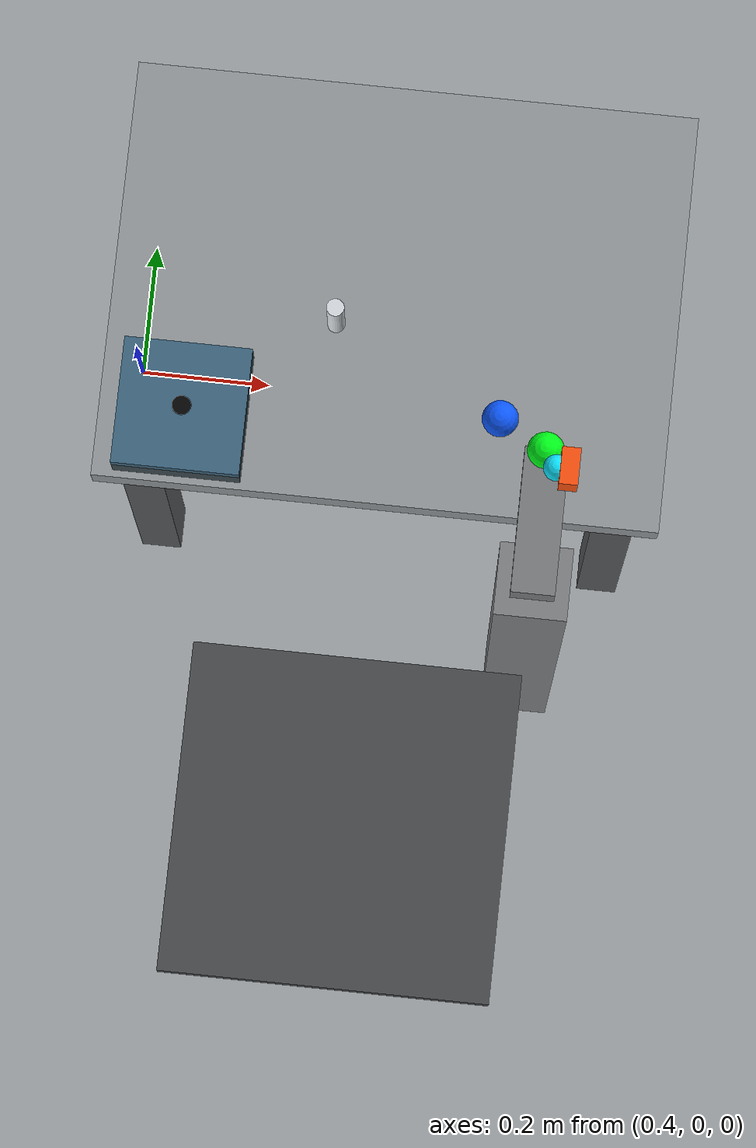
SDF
<?xml version="1.0"?>
<sdf version="1.9">
  <world name="peg_in_hole_robot_contact_validation_world">
    <physics name="1ms" type="ignored">
      <max_step_size>0.001</max_step_size>
      <real_time_factor>1.0</real_time_factor>
      <real_time_update_rate>1000</real_time_update_rate>
    </physics>

    <plugin name="gz::sim::systems::Physics" filename="ignition-gazebo-physics-system"/>
    <plugin name="gz::sim::systems::UserCommands" filename="ignition-gazebo-user-commands-system"/>
    <plugin name="gz::sim::systems::SceneBroadcaster" filename="ignition-gazebo-scene-broadcaster-system"/>
    <plugin name="gz::sim::systems::Contact" filename="ignition-gazebo-contact-system"/>

    <gravity>0 0 -9.81</gravity>
    <magnetic_field>6.0e-6 2.3e-5 -4.2e-5</magnetic_field>
    <atmosphere type="adiabatic"/>

    <scene>
      <ambient>0.45 0.45 0.45 1</ambient>
      <background>0.72 0.74 0.76 1</background>
      <shadows>true</shadows>
    </scene>

    <model name="ground_plane">
      <static>true</static>
      <link name="link">
        <collision name="collision">
          <geometry><plane><normal>0 0 1</normal><size>20 20</size></plane></geometry>
        </collision>
        <visual name="visual">
          <geometry><plane><normal>0 0 1</normal><size>20 20</size></plane></geometry>
          <material>
            <ambient>0.55 0.57 0.58 1</ambient>
            <diffuse>0.62 0.64 0.65 1</diffuse>
          </material>
        </visual>
      </link>
    </model>

    <include>
      <name>work_table</name>
      <uri>model://work_table</uri>
      <pose>0.80 0 0 0 0 0</pose>
    </include>

    <include>
      <name>robot_pedestal</name>
      <uri>model://robot_pedestal</uri>
      <pose>0.80 -0.75 0.0 0 0 0</pose>
    </include>

    <include>
      <name>hole_fixture</name>
      <uri>model://hole_fixture</uri>
      <pose>0.52 -0.20 0.75 0 0 0</pose>
    </include>

    <include>
      <name>target_plate</name>
      <uri>model://target_plate</uri>
      <pose>0.52 -0.20 0.79 0 0 0</pose>
    </include>

    <include>
      <name>cylindrical_peg</name>
      <uri>model://cylindrical_peg</uri>
      <pose>0.72 -0.05 0.75 0 0 0</pose>
    </include>

    <model name="robot_contact_validation_stand">
      <static>true</static>
      <pose>1.03 -0.42 0 0 0 0</pose>
      <link name="robot_contact_validation_stand_link">
        <visual name="robot_contact_validation_stand_visual">
          <pose>0 0 0.48 0 0 0</pose>
          <geometry>
            <box>
              <size>0.10 0.10 0.96</size>
            </box>
          </geometry>
          <material>
            <ambient>0.32 0.33 0.34 1</ambient>
            <diffuse>0.50 0.51 0.52 1</diffuse>
            <specular>0.15 0.15 0.15 1</specular>
          </material>
        </visual>
        <visual name="robot_contact_validation_stand_mount_visual">
          <pose>0 0.075 0.98 0 0 0</pose>
          <geometry>
            <box>
              <size>0.06 0.20 0.06</size>
            </box>
          </geometry>
          <material>
            <ambient>0.30 0.31 0.32 1</ambient>
            <diffuse>0.48 0.49 0.50 1</diffuse>
            <specular>0.12 0.12 0.12 1</specular>
          </material>
        </visual>
      </link>
    </model>

    <model name="robot_contact_validation_pad">
      <static>false</static>
      <pose>1.060 -0.295 1.140 0 0 0</pose>
      <link name="robot_contact_validation_pad_link">
        <gravity>false</gravity>
        <inertial>
          <mass>0.05</mass>
          <inertia>
            <ixx>2.083333e-05</ixx>
            <iyy>1.302083e-05</iyy>
            <izz>1.302083e-05</izz>
            <ixy>0</ixy>
            <ixz>0</ixz>
            <iyz>0</iyz>
          </inertia>
        </inertial>
        <collision name="robot_contact_validation_pad_collision">
          <geometry>
            <box>
              <size>0.025 0.05 0.05</size>
            </box>
          </geometry>
          <surface>
            <contact>
              <ode>
                <kp>2500</kp>
                <kd>35</kd>
              </ode>
            </contact>
            <friction>
              <ode>
                <mu>0.8</mu>
                <mu2>0.8</mu2>
              </ode>
            </friction>
          </surface>
        </collision>

        <sensor name="robot_contact_validation_sensor" type="contact">
          <always_on>true</always_on>
          <update_rate>100.0</update_rate>
          <topic>/world/peg_in_hole_robot_contact_validation_world/model/robot_contact_validation_pad/link/robot_contact_validation_pad_link/sensor/robot_contact_validation_sensor/contact</topic>
          <contact>
            <collision>robot_contact_validation_pad_collision</collision>
          </contact>
        </sensor>

        <visual name="robot_contact_validation_pad_visual">
          <geometry>
            <box>
              <size>0.025 0.05 0.05</size>
            </box>
          </geometry>
          <material>
            <ambient>0.80 0.18 0.04 1</ambient>
            <diffuse>1.00 0.32 0.06 1</diffuse>
            <specular>0.30 0.18 0.12 1</specular>
          </material>
        </visual>

        <visual name="robot_contact_validation_pad_center_marker">
          <pose>-0.017 0 0 0 0 0</pose>
          <geometry>
            <sphere>
              <radius>0.018</radius>
            </sphere>
          </geometry>
          <material>
            <ambient>0.02 0.65 0.85 1</ambient>
            <diffuse>0.05 0.90 1.00 1</diffuse>
            <emissive>0.01 0.20 0.25 1</emissive>
          </material>
        </visual>
      </link>
    </model>

    <model name="measured_pre_approach_tool0_marker">
      <static>true</static>
      <!--
        Visual-only marker at the measured robot_contact_pre_approach tool0
        pose. This model intentionally has no collision and is not a contact
        object.
      -->
      <pose>0.963 -0.212 1.011 0 0 0</pose>
      <link name="measured_pre_approach_tool0_marker_link">
        <visual name="measured_pre_approach_tool0_marker_visual">
          <geometry>
            <sphere>
              <radius>0.025</radius>
            </sphere>
          </geometry>
          <material>
            <ambient>0.02 0.20 1.00 1</ambient>
            <diffuse>0.05 0.35 1.00 1</diffuse>
            <emissive>0.01 0.08 0.45 1</emissive>
          </material>
        </visual>
      </link>
    </model>

    <model name="measured_final_tool0_marker">
      <static>true</static>
      <!--
        Visual-only marker at the measured v1.5 final tool0 endpoint. This
        model intentionally has no collision and is not a contact object.
      -->
      <pose>1.027 -0.267 1.108 0 0 0</pose>
      <link name="measured_final_tool0_marker_link">
        <visual name="measured_final_tool0_marker_visual">
          <geometry>
            <sphere>
              <radius>0.025</radius>
            </sphere>
          </geometry>
          <material>
            <ambient>0.00 1.00 0.10 1</ambient>
            <diffuse>0.00 1.00 0.10 1</diffuse>
            <emissive>0.00 0.60 0.06 1</emissive>
          </material>
        </visual>
      </link>
    </model>

    <light name="key_area_light" type="point">
      <pose>0.20 -0.60 1.80 0 0 0</pose>
      <cast_shadows>true</cast_shadows>
      <intensity>1.4</intensity>
      <diffuse>0.95 0.95 0.90 1</diffuse>
      <specular>0.35 0.35 0.35 1</specular>
      <attenuation>
        <range>5.0</range>
        <constant>0.6</constant>
        <linear>0.15</linear>
        <quadratic>0.02</quadratic>
      </attenuation>
    </light>

    <light name="sun" type="directional">
      <pose>0 0 10 0 0 0</pose>
      <cast_shadows>true</cast_shadows>
      <intensity>0.8</intensity>
      <direction>-0.4 0.2 -0.9</direction>
      <diffuse>0.80 0.82 0.85 1</diffuse>
      <specular>0.20 0.20 0.20 1</specular>
    </light>
  </world>
</sdf>

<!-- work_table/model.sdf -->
<sdf version="1.9">
  <model name="work_table">
    <static>true</static>
    <link name="table_link">
      <!-- Research-cell bench: 0.80 m x 0.60 m top, 0.05 m thick, with a 0.75 m work surface. -->
      <collision name="table_collision">
        <pose>0 0 0.725 0 0 0</pose>
        <geometry><box><size>0.80 0.60 0.05</size></box></geometry>
        <surface>
          <friction><ode><mu>0.8</mu><mu2>0.8</mu2></ode></friction>
        </surface>
      </collision>
      <visual name="tabletop_visual">
        <pose>0 0 0.725 0 0 0</pose>
        <geometry><box><size>0.80 0.60 0.05</size></box></geometry>
        <material>
          <ambient>0.45 0.47 0.48 1</ambient>
          <diffuse>0.58 0.60 0.61 1</diffuse>
          <specular>0.15 0.15 0.15 1</specular>
        </material>
      </visual>

      <collision name="leg_front_left_collision">
        <pose>0.34 0.24 0.35 0 0 0</pose>
        <geometry><box><size>0.06 0.06 0.70</size></box></geometry>
      </collision>
      <visual name="leg_front_left_visual">
        <pose>0.34 0.24 0.35 0 0 0</pose>
        <geometry><box><size>0.06 0.06 0.70</size></box></geometry>
        <material><ambient>0.28 0.29 0.30 1</ambient><diffuse>0.34 0.35 0.36 1</diffuse></material>
      </visual>

      <collision name="leg_front_right_collision">
        <pose>0.34 -0.24 0.35 0 0 0</pose>
        <geometry><box><size>0.06 0.06 0.70</size></box></geometry>
      </collision>
      <visual name="leg_front_right_visual">
        <pose>0.34 -0.24 0.35 0 0 0</pose>
        <geometry><box><size>0.06 0.06 0.70</size></box></geometry>
        <material><ambient>0.28 0.29 0.30 1</ambient><diffuse>0.34 0.35 0.36 1</diffuse></material>
      </visual>

      <collision name="leg_rear_left_collision">
        <pose>-0.34 0.24 0.35 0 0 0</pose>
        <geometry><box><size>0.06 0.06 0.70</size></box></geometry>
      </collision>
      <visual name="leg_rear_left_visual">
        <pose>-0.34 0.24 0.35 0 0 0</pose>
        <geometry><box><size>0.06 0.06 0.70</size></box></geometry>
        <material><ambient>0.28 0.29 0.30 1</ambient><diffuse>0.34 0.35 0.36 1</diffuse></material>
      </visual>

      <collision name="leg_rear_right_collision">
        <pose>-0.34 -0.24 0.35 0 0 0</pose>
        <geometry><box><size>0.06 0.06 0.70</size></box></geometry>
      </collision>
      <visual name="leg_rear_right_visual">
        <pose>-0.34 -0.24 0.35 0 0 0</pose>
        <geometry><box><size>0.06 0.06 0.70</size></box></geometry>
        <material><ambient>0.28 0.29 0.30 1</ambient><diffuse>0.34 0.35 0.36 1</diffuse></material>
      </visual>
    </link>
  </model>
</sdf>

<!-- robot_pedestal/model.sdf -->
<sdf version="1.9">
  <model name="robot_pedestal">
    <static>true</static>
    <link name="pedestal_link">
      <!-- 0.75 m static stand: its top supports the KUKA base at table-surface height. -->
      <collision name="column_collision">
        <pose>0 0 0.36 0 0 0</pose>
        <geometry>
          <cylinder>
            <radius>0.18</radius>
            <length>0.72</length>
          </cylinder>
        </geometry>
        <surface>
          <friction><ode><mu>0.9</mu><mu2>0.9</mu2></ode></friction>
        </surface>
      </collision>
      <visual name="column_visual">
        <pose>0 0 0.36 0 0 0</pose>
        <geometry>
          <cylinder>
            <radius>0.18</radius>
            <length>0.72</length>
          </cylinder>
        </geometry>
        <material>
          <ambient>0.30 0.31 0.32 1</ambient>
          <diffuse>0.42 0.43 0.44 1</diffuse>
          <specular>0.20 0.20 0.20 1</specular>
        </material>
      </visual>

      <collision name="top_plate_collision">
        <pose>0 0 0.735 0 0 0</pose>
        <geometry><box><size>0.46 0.46 0.03</size></box></geometry>
      </collision>
      <visual name="top_plate_visual">
        <pose>0 0 0.735 0 0 0</pose>
        <geometry><box><size>0.46 0.46 0.03</size></box></geometry>
        <material>
          <ambient>0.20 0.21 0.22 1</ambient>
          <diffuse>0.28 0.29 0.30 1</diffuse>
          <specular>0.25 0.25 0.25 1</specular>
        </material>
      </visual>
    </link>
  </model>
</sdf>

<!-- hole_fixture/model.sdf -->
<sdf version="1.9">
  <model name="hole_fixture">
    <static>true</static>
    <link name="fixture_link">
      <!-- Low 180 mm square nest placed directly on the table; the central opening clears the 27 mm hole marker. -->
      <pose>0 0 0.02 0 0 0</pose>
      <collision name="hole_fixture_collision">
        <pose>0 0.054 0 0 0 0</pose>
        <geometry><box><size>0.18 0.072 0.04</size></box></geometry>
      </collision>
      <collision name="fixture_rear_collision">
        <pose>0 -0.054 0 0 0 0</pose>
        <geometry><box><size>0.18 0.072 0.04</size></box></geometry>
      </collision>
      <collision name="fixture_left_collision">
        <pose>-0.054 0 0 0 0 0</pose>
        <geometry><box><size>0.072 0.036 0.04</size></box></geometry>
      </collision>
      <collision name="fixture_right_collision">
        <pose>0.054 0 0 0 0 0</pose>
        <geometry><box><size>0.072 0.036 0.04</size></box></geometry>
      </collision>
      <sensor name="hole_contact_sensor" type="contact">
        <always_on>true</always_on>
        <update_rate>100.0</update_rate>
        <topic>/gazebo/contacts/hole</topic>
        <contact>
          <collision>hole_fixture_collision</collision>
          <collision>fixture_rear_collision</collision>
          <collision>fixture_left_collision</collision>
          <collision>fixture_right_collision</collision>
        </contact>
      </sensor>
      <visual name="fixture_visual">
        <geometry><box><size>0.18 0.18 0.04</size></box></geometry>
        <material>
          <ambient>0.18 0.22 0.24 1</ambient>
          <diffuse>0.24 0.30 0.32 1</diffuse>
          <specular>0.20 0.22 0.22 1</specular>
        </material>
      </visual>
      <visual name="fixture_socket_visual">
        <pose>0 0 0.021 0 0 0</pose>
        <geometry><cylinder><radius>0.0135</radius><length>0.004</length></cylinder></geometry>
        <material>
          <ambient>0.02 0.02 0.02 1</ambient>
          <diffuse>0.03 0.03 0.03 1</diffuse>
        </material>
      </visual>
    </link>
  </model>
</sdf>

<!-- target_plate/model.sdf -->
<sdf version="1.9">
  <model name="target_plate">
    <static>true</static>
    <link name="plate_link">
      <!-- 180 mm square, 20 mm thick target plate with a 27 mm nominal hole for a 25 mm peg. -->
      <pose>0 0 0.01 0 0 0</pose>

      <collision name="target_plate_collision">
        <pose>0 0.054 0 0 0 0</pose>
        <geometry><box><size>0.18 0.072 0.02</size></box></geometry>
      </collision>
      <collision name="plate_rear_collision">
        <pose>0 -0.054 0 0 0 0</pose>
        <geometry><box><size>0.18 0.072 0.02</size></box></geometry>
      </collision>
      <collision name="plate_left_collision">
        <pose>-0.054 0 0 0 0 0</pose>
        <geometry><box><size>0.072 0.036 0.02</size></box></geometry>
      </collision>
      <collision name="plate_right_collision">
        <pose>0.054 0 0 0 0 0</pose>
        <geometry><box><size>0.072 0.036 0.02</size></box></geometry>
      </collision>
      <sensor name="target_contact_sensor" type="contact">
        <always_on>true</always_on>
        <update_rate>100.0</update_rate>
        <topic>/gazebo/contacts/target</topic>
        <contact>
          <collision>target_plate_collision</collision>
          <collision>plate_rear_collision</collision>
          <collision>plate_left_collision</collision>
          <collision>plate_right_collision</collision>
        </contact>
      </sensor>

      <visual name="plate_visual">
        <geometry><box><size>0.18 0.18 0.02</size></box></geometry>
        <material>
          <ambient>0.18 0.28 0.36 1</ambient>
          <diffuse>0.24 0.40 0.50 1</diffuse>
          <specular>0.25 0.25 0.25 1</specular>
        </material>
      </visual>
      <visual name="hole_opening_visual">
        <pose>0 0 0.0105 0 0 0</pose>
        <geometry><cylinder><radius>0.0135</radius><length>0.003</length></cylinder></geometry>
        <material>
          <ambient>0.01 0.01 0.01 1</ambient>
          <diffuse>0.02 0.02 0.02 1</diffuse>
        </material>
      </visual>
    </link>
  </model>
</sdf>

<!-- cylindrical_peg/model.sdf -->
<sdf version="1.9">
  <model name="cylindrical_peg">
    <static>false</static>
    <link name="peg_link">
      <!-- 25 mm diameter, 110 mm long aluminum-class peg for small-part insertion studies. -->
      <pose>0 0 0.055 0 0 0</pose>
      <inertial>
        <mass>0.15</mass>
        <inertia>
          <ixx>0.000157</ixx><ixy>0</ixy><ixz>0</ixz>
          <iyy>0.000157</iyy><iyz>0</iyz><izz>0.0000117</izz>
        </inertia>
      </inertial>
      <collision name="peg_collision">
        <geometry><cylinder><radius>0.0125</radius><length>0.11</length></cylinder></geometry>
        <surface>
          <friction><ode><mu>0.35</mu><mu2>0.35</mu2></ode></friction>
          <contact><ode><kp>1000000</kp><kd>10</kd></ode></contact>
        </surface>
      </collision>
      <sensor name="peg_contact_sensor" type="contact">
        <always_on>true</always_on>
        <update_rate>100.0</update_rate>
        <topic>/gazebo/contacts/peg</topic>
        <contact>
          <collision>peg_collision</collision>
        </contact>
      </sensor>
      <visual name="peg_visual">
        <geometry><cylinder><radius>0.0125</radius><length>0.11</length></cylinder></geometry>
        <material>
          <ambient>0.70 0.72 0.74 1</ambient>
          <diffuse>0.86 0.88 0.90 1</diffuse>
          <specular>0.45 0.45 0.45 1</specular>
        </material>
      </visual>
    </link>
  </model>
</sdf>
